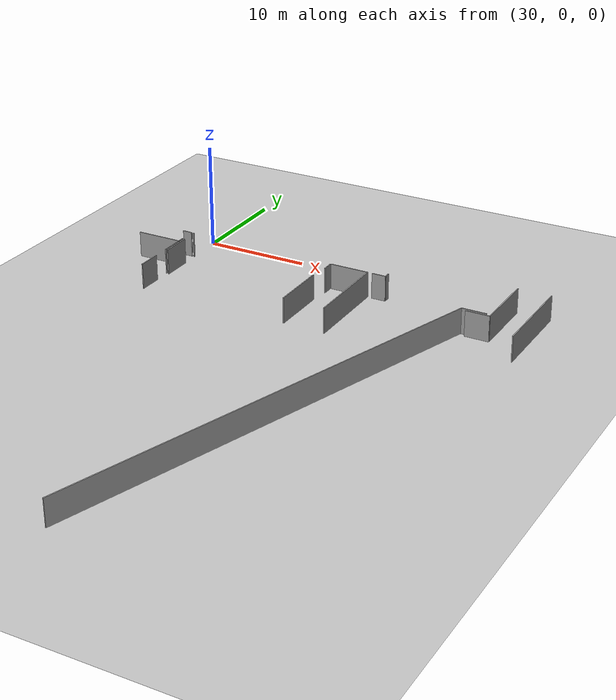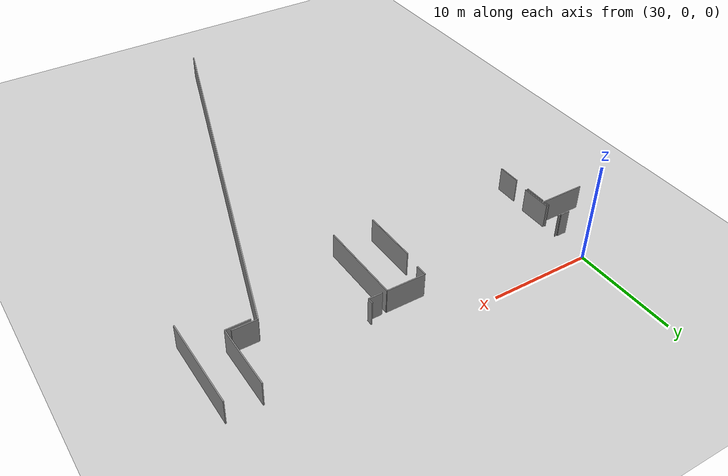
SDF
<sdf version="1.6">
 <world name="default">
  <model name="ground_plane">
   <static>1</static>
   <link name="link">
    <collision name="collision">
     <geometry><plane><normal>0 0 1</normal><size>100 100</size></plane></geometry>
     <surface><friction><ode><mu>100</mu><mu2>50</mu2></ode></friction></surface>
    </collision>
    <visual name="visual">
     <cast_shadows>0</cast_shadows>
     <geometry><plane><normal>0 0 1</normal><size>100 100</size></plane></geometry>
     <material>
      <script><uri>file://media/materials/scripts/gazebo.material</uri><name>Gazebo/Grey</name></script>
     </material>
    </visual>
   </link>
  </model>
  <model name="0510032217_A-40">
   <static>1</static>
   <link name="Wall_164">
    <collision name="Wall_164_Collision">
     <geometry><box><size>1.36534361994 0.1 2.5</size></box></geometry>
     <pose>0.682671809969 0 1.25 0 0 0</pose>
    </collision>
    <visual name="Wall_164_Visual">
     <pose>0.682671809969 0 1.25 0 0 0</pose>
     <geometry><box><size>1.36534361994 0.1 2.5</size></box></geometry>
     <material>
      <script><uri>file://media/materials/scripts/gazebo.material</uri><name>Gazebo/Grey</name></script>
      <ambient>1 1 1 1</ambient>
     </material>
    </visual>
    <pose>126.171771901 -56.6730788752 0 0 0 0.0</pose>
   </link>
   <link name="Wall_165">
    <collision name="Wall_165_Collision">
     <geometry><box><size>0.580397929144 0.1 2.5</size></box></geometry>
     <pose>0.290198964572 0 1.25 0 0 0</pose>
    </collision>
    <visual name="Wall_165_Visual">
     <pose>0.290198964572 0 1.25 0 0 0</pose>
     <geometry><box><size>0.580397929144 0.1 2.5</size></box></geometry>
     <material>
      <script><uri>file://media/materials/scripts/gazebo.material</uri><name>Gazebo/Grey</name></script>
      <ambient>1 1 1 1</ambient>
     </material>
    </visual>
    <pose>127.537115521 -56.6730788752 0 0 0 1.57079632679</pose>
   </link>
   <link name="Wall_185">
    <collision name="Wall_185_Collision">
     <geometry><box><size>2.38046898792 0.1 2.5</size></box></geometry>
     <pose>1.19023449396 0 1.25 0 0 0</pose>
    </collision>
    <visual name="Wall_185_Visual">
     <pose>1.19023449396 0 1.25 0 0 0</pose>
     <geometry><box><size>2.38046898792 0.1 2.5</size></box></geometry>
     <material>
      <script><uri>file://media/materials/scripts/gazebo.material</uri><name>Gazebo/Grey</name></script>
      <ambient>1 1 1 1</ambient>
     </material>
    </visual>
    <pose>138.655276114 -59.3419703583 0 0 0 3.14159265359</pose>
   </link>
   <link name="Wall_186">
    <collision name="Wall_186_Collision">
     <geometry><box><size>43.6041501312 0.1 2.5</size></box></geometry>
     <pose>21.8020750656 0 1.25 0 0 0</pose>
    </collision>
    <visual name="Wall_186_Visual">
     <pose>21.8020750656 0 1.25 0 0 0</pose>
     <geometry><box><size>43.6041501312 0.1 2.5</size></box></geometry>
     <material>
      <script><uri>file://media/materials/scripts/gazebo.material</uri><name>Gazebo/Grey</name></script>
      <ambient>1 1 1 1</ambient>
     </material>
    </visual>
    <pose>136.274807126 -59.3419703583 0 0 0 -1.88040215409</pose>
   </link>
   <link name="Wall_239">
    <collision name="Wall_239_Collision">
     <geometry><box><size>2.314485839 0.1 2.5</size></box></geometry>
     <pose>1.1572429195 0 1.25 0 0 0</pose>
    </collision>
    <visual name="Wall_239_Visual">
     <pose>1.1572429195 0 1.25 0 0 0</pose>
     <geometry><box><size>2.314485839 0.1 2.5</size></box></geometry>
     <material>
      <script><uri>file://media/materials/scripts/gazebo.material</uri><name>Gazebo/Grey</name></script>
      <ambient>1 1 1 1</ambient>
     </material>
    </visual>
    <pose>136.760798396 -59.6362298244 0 0 0 0.0</pose>
   </link>
   <link name="Wall_240">
    <collision name="Wall_240_Collision">
     <geometry><box><size>6.32575373059 0.1 2.5</size></box></geometry>
     <pose>3.16287686529 0 1.25 0 0 0</pose>
    </collision>
    <visual name="Wall_240_Visual">
     <pose>3.16287686529 0 1.25 0 0 0</pose>
     <geometry><box><size>6.32575373059 0.1 2.5</size></box></geometry>
     <material>
      <script><uri>file://media/materials/scripts/gazebo.material</uri><name>Gazebo/Grey</name></script>
      <ambient>1 1 1 1</ambient>
     </material>
    </visual>
    <pose>139.075284235 -59.6362298244 0 0 0 1.57079632679</pose>
   </link>
   <link name="Wall_248">
    <collision name="Wall_248_Collision">
     <geometry><box><size>8.93310323825 0.1 2.5</size></box></geometry>
     <pose>4.46655161912 0 1.25 0 0 0</pose>
    </collision>
    <visual name="Wall_248_Visual">
     <pose>4.46655161912 0 1.25 0 0 0</pose>
     <geometry><box><size>8.93310323825 0.1 2.5</size></box></geometry>
     <material>
      <script><uri>file://media/materials/scripts/gazebo.material</uri><name>Gazebo/Grey</name></script>
      <ambient>1 1 1 1</ambient>
     </material>
    </visual>
    <pose>142.271660238 -62.2029743173 0 0 0 1.57079632679</pose>
   </link>
   <link name="Wall_576">
    <collision name="Wall_576_Collision">
     <geometry><box><size>4.46363313369 0.1 2.5</size></box></geometry>
     <pose>2.23181656685 0 1.25 0 0 0</pose>
    </collision>
    <visual name="Wall_576_Visual">
     <pose>2.23181656685 0 1.25 0 0 0</pose>
     <geometry><box><size>4.46363313369 0.1 2.5</size></box></geometry>
     <material>
      <script><uri>file://media/materials/scripts/gazebo.material</uri><name>Gazebo/Grey</name></script>
      <ambient>1 1 1 1</ambient>
     </material>
    </visual>
    <pose>106.660808547 -58.9201857679 0 0 0 3.14159265359</pose>
   </link>
   <link name="Wall_579">
    <collision name="Wall_579_Collision">
     <geometry><box><size>0.950411125774 0.1 2.5</size></box></geometry>
     <pose>0.475205562887 0 1.25 0 0 0</pose>
    </collision>
    <visual name="Wall_579_Visual">
     <pose>0.475205562887 0 1.25 0 0 0</pose>
     <geometry><box><size>0.950411125774 0.1 2.5</size></box></geometry>
     <material>
      <script><uri>file://media/materials/scripts/gazebo.material</uri><name>Gazebo/Grey</name></script>
      <ambient>1 1 1 1</ambient>
     </material>
    </visual>
    <pose>105.695170541 -56.6591209014 0 0 0 0.0</pose>
   </link>
   <link name="Wall_580">
    <collision name="Wall_580_Collision">
     <geometry><box><size>0.0751192772307 0.1 2.5</size></box></geometry>
     <pose>0.0375596386154 0 1.25 0 0 0</pose>
    </collision>
    <visual name="Wall_580_Visual">
     <pose>0.0375596386154 0 1.25 0 0 0</pose>
     <geometry><box><size>0.0751192772307 0.1 2.5</size></box></geometry>
     <material>
      <script><uri>file://media/materials/scripts/gazebo.material</uri><name>Gazebo/Grey</name></script>
      <ambient>1 1 1 1</ambient>
     </material>
    </visual>
    <pose>106.645581667 -56.6591209014 0 0 0 -1.57079632679</pose>
   </link>
   <link name="Wall_581">
    <collision name="Wall_581_Collision">
     <geometry><box><size>0.633874926661 0.1 2.5</size></box></geometry>
     <pose>0.31693746333 0 1.25 0 0 0</pose>
    </collision>
    <visual name="Wall_581_Visual">
     <pose>0.31693746333 0 1.25 0 0 0</pose>
     <geometry><box><size>0.633874926661 0.1 2.5</size></box></geometry>
     <material>
      <script><uri>file://media/materials/scripts/gazebo.material</uri><name>Gazebo/Grey</name></script>
      <ambient>1 1 1 1</ambient>
     </material>
    </visual>
    <pose>106.645581667 -58.286493757 0 0 0 -1.54677211522</pose>
   </link>
   <link name="Wall_584">
    <collision name="Wall_584_Collision">
     <geometry><box><size>2.92647954522 0.1 2.5</size></box></geometry>
     <pose>1.46323977261 0 1.25 0 0 0</pose>
    </collision>
    <visual name="Wall_584_Visual">
     <pose>1.46323977261 0 1.25 0 0 0</pose>
     <geometry><box><size>2.92647954522 0.1 2.5</size></box></geometry>
     <material>
      <script><uri>file://media/materials/scripts/gazebo.material</uri><name>Gazebo/Grey</name></script>
      <ambient>1 1 1 1</ambient>
     </material>
    </visual>
    <pose>106.886166379 -61.2321337935 0 0 0 1.57079632679</pose>
   </link>
   <link name="Wall_585">
    <collision name="Wall_585_Collision">
     <geometry><box><size>0.0917419551315 0.1 2.5</size></box></geometry>
     <pose>0.0458709775657 0 1.25 0 0 0</pose>
    </collision>
    <visual name="Wall_585_Visual">
     <pose>0.0458709775657 0 1.25 0 0 0</pose>
     <geometry><box><size>0.0917419551315 0.1 2.5</size></box></geometry>
     <material>
      <script><uri>file://media/materials/scripts/gazebo.material</uri><name>Gazebo/Grey</name></script>
      <ambient>1 1 1 1</ambient>
     </material>
    </visual>
    <pose>106.886166379 -56.7508628566 0 0 0 1.57079632679</pose>
   </link>
   <link name="Wall_591">
    <collision name="Wall_591_Collision">
     <geometry><box><size>2.0821490204 0.1 2.5</size></box></geometry>
     <pose>1.0410745102 0 1.25 0 0 0</pose>
    </collision>
    <visual name="Wall_591_Visual">
     <pose>1.0410745102 0 1.25 0 0 0</pose>
     <geometry><box><size>2.0821490204 0.1 2.5</size></box></geometry>
     <material>
      <script><uri>file://media/materials/scripts/gazebo.material</uri><name>Gazebo/Grey</name></script>
      <ambient>1 1 1 1</ambient>
     </material>
    </visual>
    <pose>106.646723683 -59.1211805908 0 0 0 -1.57079632679</pose>
   </link>
   <link name="Wall_592">
    <collision name="Wall_592_Collision">
     <geometry><box><size>2.27808361034 0.1 2.5</size></box></geometry>
     <pose>1.13904180517 0 1.25 0 0 0</pose>
    </collision>
    <visual name="Wall_592_Visual">
     <pose>1.13904180517 0 1.25 0 0 0</pose>
     <geometry><box><size>2.27808361034 0.1 2.5</size></box></geometry>
     <material>
      <script><uri>file://media/materials/scripts/gazebo.material</uri><name>Gazebo/Grey</name></script>
      <ambient>1 1 1 1</ambient>
     </material>
    </visual>
    <pose>106.646723683 -62.7631966298 0 0 0 -1.57447257604</pose>
   </link>
   <link name="Wall_598">
    <collision name="Wall_598_Collision">
     <geometry><box><size>5.49681447078 0.1 2.5</size></box></geometry>
     <pose>2.74840723539 0 1.25 0 0 0</pose>
    </collision>
    <visual name="Wall_598_Visual">
     <pose>2.74840723539 0 1.25 0 0 0</pose>
     <geometry><box><size>5.49681447078 0.1 2.5</size></box></geometry>
     <material>
      <script><uri>file://media/materials/scripts/gazebo.material</uri><name>Gazebo/Grey</name></script>
      <ambient>1 1 1 1</ambient>
     </material>
    </visual>
    <pose>121.626548066 -59.5371282103 0 0 0 -1.56710281419</pose>
   </link>
   <link name="Wall_601">
    <collision name="Wall_601_Collision">
     <geometry><box><size>1.103441275 0.1 2.5</size></box></geometry>
     <pose>0.551720637499 0 1.25 0 0 0</pose>
    </collision>
    <visual name="Wall_601_Visual">
     <pose>0.551720637499 0 1.25 0 0 0</pose>
     <geometry><box><size>1.103441275 0.1 2.5</size></box></geometry>
     <material>
      <script><uri>file://media/materials/scripts/gazebo.material</uri><name>Gazebo/Grey</name></script>
      <ambient>1 1 1 1</ambient>
     </material>
    </visual>
    <pose>121.873984875 -57.7683991473 0 0 0 1.57079632679</pose>
   </link>
   <link name="Wall_602">
    <collision name="Wall_602_Collision">
     <geometry><box><size>3.84732514466 0.1 2.5</size></box></geometry>
     <pose>1.92366257233 0 1.25 0 0 0</pose>
    </collision>
    <visual name="Wall_602_Visual">
     <pose>1.92366257233 0 1.25 0 0 0</pose>
     <geometry><box><size>3.84732514466 0.1 2.5</size></box></geometry>
     <material>
      <script><uri>file://media/materials/scripts/gazebo.material</uri><name>Gazebo/Grey</name></script>
      <ambient>1 1 1 1</ambient>
     </material>
    </visual>
    <pose>121.873984875 -56.6649578723 0 0 0 0.0</pose>
   </link>
   <link name="Wall_603">
    <collision name="Wall_603_Collision">
     <geometry><box><size>8.38591017626 0.1 2.5</size></box></geometry>
     <pose>4.19295508813 0 1.25 0 0 0</pose>
    </collision>
    <visual name="Wall_603_Visual">
     <pose>4.19295508813 0 1.25 0 0 0</pose>
     <geometry><box><size>8.38591017626 0.1 2.5</size></box></geometry>
     <material>
      <script><uri>file://media/materials/scripts/gazebo.material</uri><name>Gazebo/Grey</name></script>
      <ambient>1 1 1 1</ambient>
     </material>
    </visual>
    <pose>125.721310019 -56.6649578723 0 0 0 -1.56625688728</pose>
   </link>
   <pose>-76.8 53.1213480865 0 0 0 0</pose>
  </model>
 </world>
</sdf>
